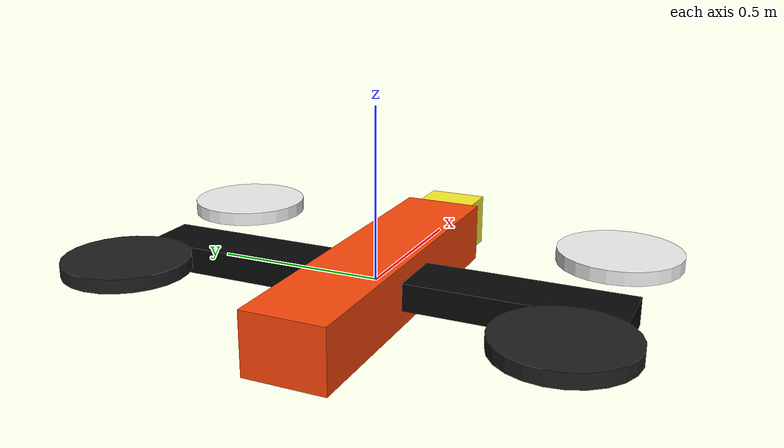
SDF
<?xml version="1.0"?>
<sdf version="1.7">
  <model name="target_marker">
    <static>false</static>
    <link name="base_link">
      <gravity>false</gravity>
      <inertial>
        <mass>0.5</mass>
        <inertia>
          <ixx>0.01</ixx>
          <iyy>0.01</iyy>
          <izz>0.01</izz>
          <ixy>0.0</ixy>
          <ixz>0.0</ixz>
          <iyz>0.0</iyz>
        </inertia>
      </inertial>

      <visual name="body">
        <geometry>
          <box>
            <size>1.05 0.24 0.18</size>
          </box>
        </geometry>
        <material>
          <ambient>1.0 0.28 0.04 1</ambient>
          <diffuse>1.0 0.28 0.04 1</diffuse>
          <specular>0.4 0.2 0.1 1</specular>
        </material>
      </visual>

      <visual name="cross_arm">
        <geometry>
          <box>
            <size>0.18 1.45 0.08</size>
          </box>
        </geometry>
        <material>
          <ambient>0.03 0.03 0.035 1</ambient>
          <diffuse>0.03 0.03 0.035 1</diffuse>
        </material>
      </visual>

      <visual name="nose">
        <pose>0.58 0 0 0 0 0</pose>
        <geometry>
          <box>
            <size>0.18 0.18 0.16</size>
          </box>
        </geometry>
        <material>
          <ambient>1.0 0.95 0.18 1</ambient>
          <diffuse>1.0 0.95 0.18 1</diffuse>
        </material>
      </visual>

      <visual name="rotor_front_left">
        <pose>0.32 0.62 0.06 0 0 0</pose>
        <geometry>
          <cylinder>
            <radius>0.18</radius>
            <length>0.04</length>
          </cylinder>
        </geometry>
        <material>
          <ambient>0.95 0.95 0.95 1</ambient>
          <diffuse>0.95 0.95 0.95 1</diffuse>
        </material>
      </visual>

      <visual name="rotor_front_right">
        <pose>0.32 -0.62 0.06 0 0 0</pose>
        <geometry>
          <cylinder>
            <radius>0.18</radius>
            <length>0.04</length>
          </cylinder>
        </geometry>
        <material>
          <ambient>0.95 0.95 0.95 1</ambient>
          <diffuse>0.95 0.95 0.95 1</diffuse>
        </material>
      </visual>

      <visual name="rotor_rear_left">
        <pose>-0.32 0.62 0.06 0 0 0</pose>
        <geometry>
          <cylinder>
            <radius>0.18</radius>
            <length>0.04</length>
          </cylinder>
        </geometry>
        <material>
          <ambient>0.12 0.12 0.12 1</ambient>
          <diffuse>0.12 0.12 0.12 1</diffuse>
        </material>
      </visual>

      <visual name="rotor_rear_right">
        <pose>-0.32 -0.62 0.06 0 0 0</pose>
        <geometry>
          <cylinder>
            <radius>0.18</radius>
            <length>0.04</length>
          </cylinder>
        </geometry>
        <material>
          <ambient>0.12 0.12 0.12 1</ambient>
          <diffuse>0.12 0.12 0.12 1</diffuse>
        </material>
      </visual>

      <collision name="collision">
        <geometry>
          <box>
            <size>1.1 1.5 0.22</size>
          </box>
        </geometry>
      </collision>
    </link>
  </model>
</sdf>
